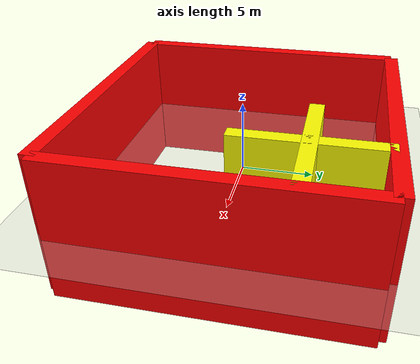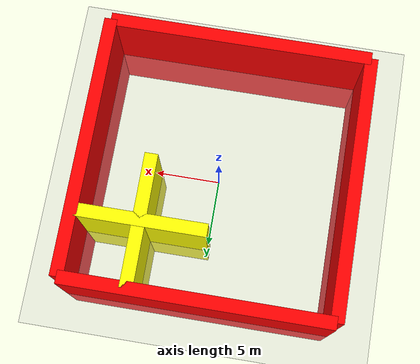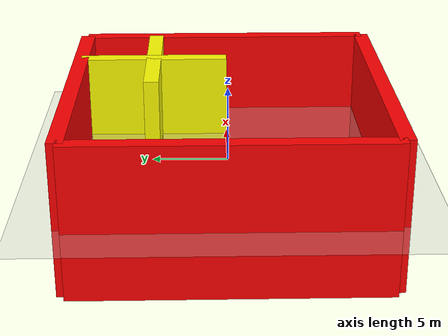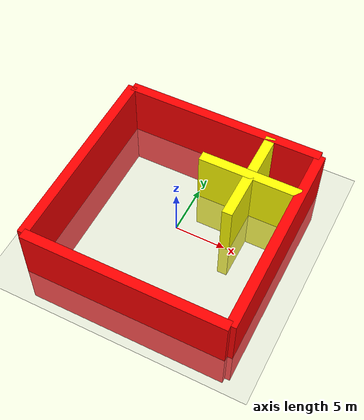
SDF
<sdf version="1.8">
 <world name="semantic_segmentation_husky">
  <plugin filename="ignition-gazebo-physics-system" name="ignition::gazebo::systems::Physics"/>
  <plugin filename="ignition-gazebo-user-commands-system" name="ignition::gazebo::systems::UserCommands"/>
  <plugin filename="ignition-gazebo-scene-broadcaster-system" name="ignition::gazebo::systems::SceneBroadcaster"/>
  <plugin filename="ignition-gazebo-sensors-system" name="ignition::gazebo::systems::Sensors">
   <render_engine>ogre2</render_engine>
  </plugin>
  <physics name="1ms" type="ignored">
   <max_step_size>0.001</max_step_size>
   <real_time_factor>1.0</real_time_factor>
   <gravity>0 0 -9.8</gravity>
  </physics>
  <light type="directional" name="sun">
   <pose>0 0 10 0 0 0</pose>
   <diffuse>0.8 0.8 0.8 1</diffuse>
   <specular>0.2 0.2 0.2 1</specular>
   <attenuation>
    <range>1000</range>
    <constant>0.9</constant>
    <linear>0.01</linear>
    <quadratic>0.001</quadratic>
   </attenuation>
   <direction>-0.5 0.1 -0.9</direction>
  </light>
  <model name="ground_plane">
   <static>true</static>
   <link name="link">
    <collision name="collision">
     <geometry><plane><normal>0 0 1</normal><size>100 100</size></plane></geometry>
     <surface><friction><ode><mu>100</mu><mu2>50</mu2></ode></friction></surface>
    </collision>
    <visual name="visual">
     <geometry><plane><normal>0 0 1</normal><size>100 100</size></plane></geometry>
     <material>
      <ambient>0.8 0.8 0.8 1</ambient>
      <diffuse>0.8 0.8 0.8 1</diffuse>
      <specular>0.8 0.8 0.8 1</specular>
     </material>
    </visual>
   </link>
  </model>
  <model name="north_wall">
   <static>true</static>
   <pose>0 10 0.5 0 0 0</pose>
   <link name="link">
    <visual name="visual">
     <geometry><box><size>20 1 10</size></box></geometry>
     <material><ambient>1 0 0 1</ambient><diffuse>1 0 0 1</diffuse><specular>0.5 0.5 0.5 1</specular></material>
    </visual>
    <collision name="collision"><geometry><box><size>20 1 10</size></box></geometry></collision>
   </link>
   <plugin filename="ignition-gazebo-label-system" name="ignition::gazebo::systems::Label">
    <label>4</label>
   </plugin>
  </model>
  <model name="south_wall">
   <static>true</static>
   <pose>0 -10 0.5 0 0 0</pose>
   <link name="link">
    <visual name="visual">
     <geometry><box><size>20 1 10</size></box></geometry>
     <material><ambient>1 0 0 1</ambient><diffuse>1 0 0 1</diffuse><specular>0.5 0.5 0.5 1</specular></material>
    </visual>
    <collision name="collision"><geometry><box><size>20 1 10</size></box></geometry></collision>
   </link>
   <plugin filename="ignition-gazebo-label-system" name="ignition::gazebo::systems::Label">
    <label>4</label>
   </plugin>
  </model>
  <model name="east_wall">
   <static>true</static>
   <pose>10 0 0.5 0 0 0</pose>
   <link name="link">
    <visual name="visual">
     <geometry><box><size>1 20 10</size></box></geometry>
     <material><ambient>1 0 0 1</ambient><diffuse>1 0 0 1</diffuse><specular>0.5 0.5 0.5 1</specular></material>
    </visual>
    <collision name="collision"><geometry><box><size>1 20 10</size></box></geometry></collision>
   </link>
   <plugin filename="ignition-gazebo-label-system" name="ignition::gazebo::systems::Label">
    <label>4</label>
   </plugin>
  </model>
  <model name="west_wall">
   <static>true</static>
   <pose>-10 0 0.5 0 0 0</pose>
   <link name="link">
    <visual name="visual">
     <geometry><box><size>1 20 10</size></box></geometry>
     <material><ambient>1 0 0 1</ambient><diffuse>1 0 0 1</diffuse><specular>0.5 0.5 0.5 1</specular></material>
    </visual>
    <collision name="collision"><geometry><box><size>1 20 10</size></box></geometry></collision>
   </link>
   <plugin filename="ignition-gazebo-label-system" name="ignition::gazebo::systems::Label">
    <label>4</label>
   </plugin>
  </model>
  <model name="maze_1">
   <static>true</static>
   <pose>5 5 0.5 0 0 0</pose>
   <link name="link">
    <visual name="visual">
     <geometry><box><size>10 1 10</size></box></geometry>
     <material><ambient>1 1 0 1</ambient><diffuse>1 1 0 1</diffuse><specular>0.5 0.5 0.5 1</specular></material>
    </visual>
    <collision name="collision"><geometry><box><size>10 1 10</size></box></geometry></collision>
   </link>
   <plugin filename="ignition-gazebo-label-system" name="ignition::gazebo::systems::Label">
    <label>5</label>
   </plugin>
  </model>
  <model name="maze_2">
   <static>true</static>
   <pose>5 5 0.5 0 0 0</pose>
   <link name="link">
    <visual name="visual">
     <geometry><box><size>1 10 10</size></box></geometry>
     <material><ambient>1 1 0 1</ambient><diffuse>1 1 0 1</diffuse><specular>0.5 0.5 0.5 1</specular></material>
    </visual>
    <collision name="collision"><geometry><box><size>1 10 10</size></box></geometry></collision>
   </link>
   <plugin filename="ignition-gazebo-label-system" name="ignition::gazebo::systems::Label">
    <label>5</label>
   </plugin>
  </model>
 </world>
</sdf>
